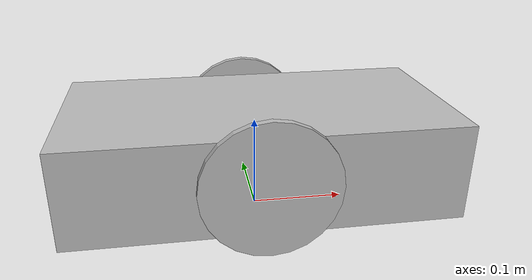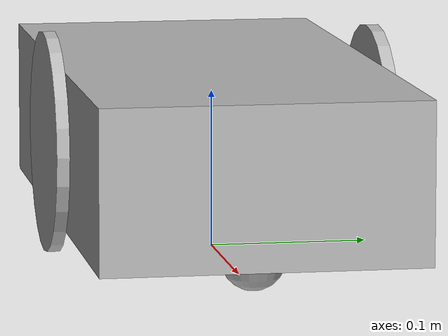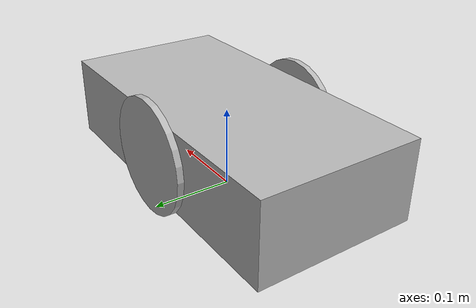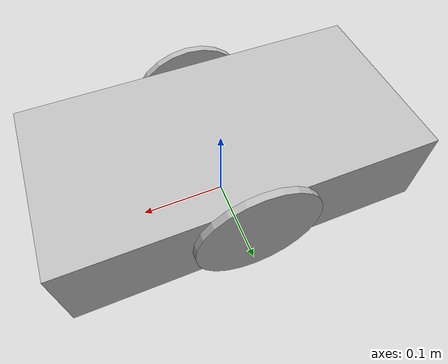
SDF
<?xml version='1.0'?>

<sdf version='1.4'>

<model name="diffdrive">

<static>false</static>

    <link name='chassis'>
        <pose>0 0 0.07 0 0 0</pose>

        <collision name='collision'>
            <geometry>
                <box>
                    <size>.4 .2 .1</size>
                </box>
            </geometry>
        </collision>

        <visual name='visual'>
            <pose>0 0 0 0 0 0</pose>
            <geometry>
                <box>
                    <size>.4 .2 .1</size>
                </box>
            </geometry>
        </visual>

        <collision name='caster_collision'>
            <pose>-0.15 0 -0.05 0 0 0</pose>
            <geometry>
                <sphere>
                    <radius>.02</radius>
                </sphere>
            </geometry>

            <surface>
                <friction>
                    <ode>
                        <mu>0</mu>
                        <mu2>0</mu2>
                        <slip1>1.0</slip1>
                        <slip2>1.0</slip2>
                    </ode>
                </friction>
            </surface>
        </collision>

        <visual name='caster_visual'>
            <pose>-0.15 0 -0.05 0 0 0</pose>
            <geometry>
                <sphere>
                    <radius>.02</radius>
                </sphere>
            </geometry>
        </visual>

        <collision name='caster_collision2'>
            <pose>0.15 0 -0.05 0 0 0</pose>
            <geometry>
                <sphere>
                    <radius>.02</radius>
                </sphere>
            </geometry>

            <surface>
                <friction>
                    <ode>
                        <mu>0</mu>
                        <mu2>0</mu2>
                        <slip1>1.0</slip1>
                        <slip2>1.0</slip2>
                    </ode>
                </friction>
            </surface>
        </collision>

        <visual name='caster_visual2'>
            <pose>0.15 0 -0.05 0 0 0</pose>
            <geometry>
                <sphere>
                    <radius>.02</radius>
                </sphere>
            </geometry>
        </visual>
    </link>

    <link name="left_wheel">
        <pose>0 0.104 0.07 -1.5707963267949 0 0</pose>

        <collision name="collision">
            <geometry>
                <cylinder>
                    <radius>.07</radius>
                    <length>.008</length>
                </cylinder>
            </geometry>

            <surface>
                <friction>
                    <torsional>
                        <coefficient>1.0</coefficient>
                        <ode>
                            <slip>0</slip>
                        </ode>
                    </torsional>
                </friction>
            </surface>
        </collision>

        <visual name="visual">
            <geometry>
                <cylinder>
                    <radius>.07</radius>
                    <length>.008</length>
                </cylinder>
            </geometry>
        </visual>

        <inertial>
            <mass>0.014</mass>
            <pose>0 0 0 0 0 0</pose>
            <inertia>
                <ixx>0.001230333</ixx>
                <iyy>0.001230333</iyy>
                <izz>0.00245</izz>
            </inertia>
        </inertial>

    </link>

    <link name="right_wheel">
        <pose>0 -0.104 0.07 1.5707963267949 0 0</pose>

        <collision name="collision">
            <geometry>
                <cylinder>
                    <radius>.07</radius>
                    <length>.008</length>
                </cylinder>
            </geometry>

            <surface>
                <friction>
                    <torsional>
                        <coefficient>1.0</coefficient>
                        <ode>
                            <slip>0</slip>
                        </ode>
                    </torsional>
                </friction>
            </surface>
        </collision>

        <visual name="visual">
            <geometry>
                <cylinder>
                    <radius>.07</radius>
                    <length>.008</length>
                </cylinder>
            </geometry>
        </visual>

        <inertial>
            <mass>0.014</mass>
            <pose>0 0 0 0 0 0</pose>
            <inertia>
                <ixx>0.001230333</ixx>
                <iyy>0.001230333</iyy>
                <izz>0.00245</izz>
            </inertia>
        </inertial>

    </link>

    <joint type="revolute" name="left_wheel_hinge">
        <pose>0 0 -0.004 0 0 0</pose>
        <child>left_wheel</child>
        <parent>chassis</parent>
        <axis>
            <xyz>0 1 0</xyz>
        </axis>
    </joint>

    <joint type="revolute" name="right_wheel_hinge">
        <pose>0 0 -0.004 0 0 0</pose>
        <child>right_wheel</child>
        <parent>chassis</parent>
        <axis>
            <xyz>0 1 0</xyz>
        </axis>
    </joint>

    <plugin name="object_controller" filename="libgazebo_ros_planar_move.so">
        <alwaysOn>true</alwaysOn>
        <commandTopic>cmd_vel</commandTopic>
        <odometryTopic>odom</odometryTopic>
        <odometryFrame>odom</odometryFrame>
        <odometryRate>50.0</odometryRate>
        <robotBaseFrame>chassis</robotBaseFrame>
    </plugin>

    <plugin name="p3d_base_controller" filename="libgazebo_ros_p3d.so">
        <alwaysOn>true</alwaysOn>
        <updateRate>50.0</updateRate>
        <bodyName>chassis</bodyName>
        <topicName>ground_truth/state</topicName>
        <gaussianNoise>0</gaussianNoise>
        <frameName>world</frameName>
        <xyzOffsets>0 0 0</xyzOffsets>
        <rpyOffsets>0 0 0</rpyOffsets>
    </plugin>

</model>

</sdf>
